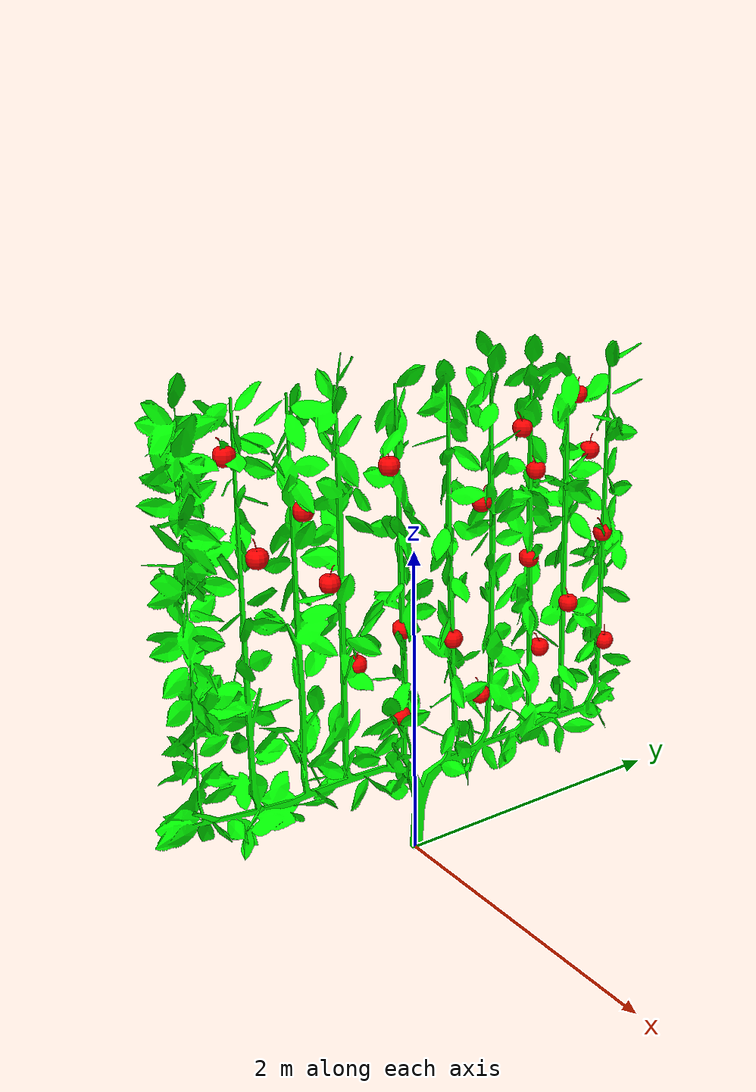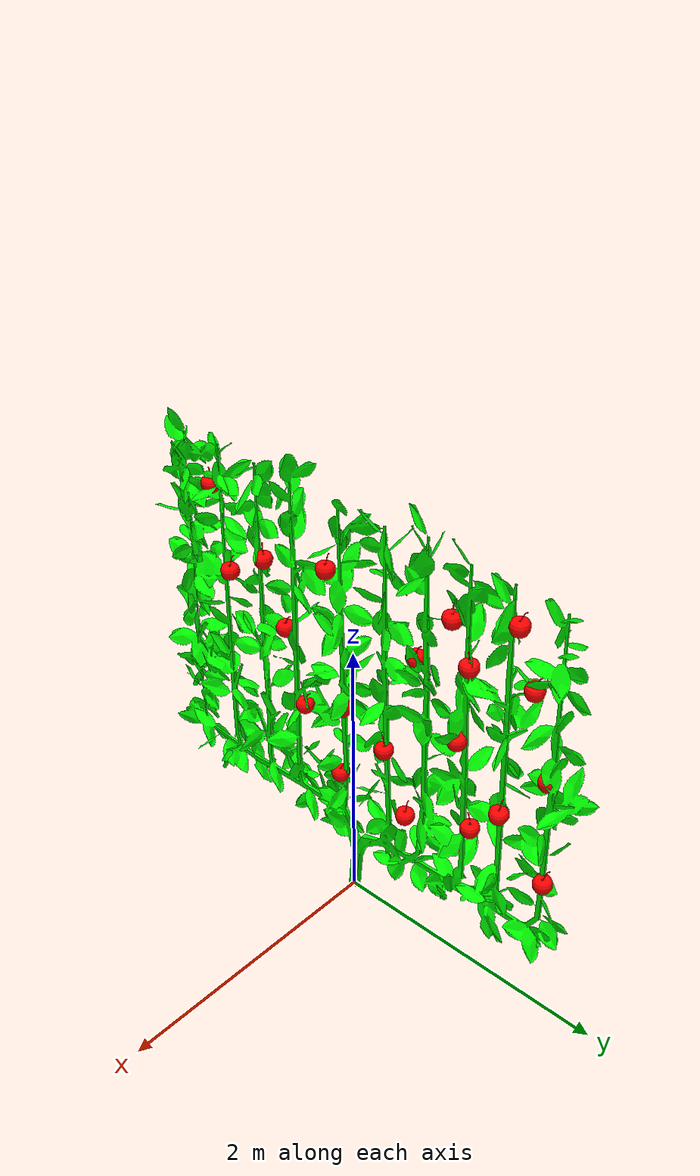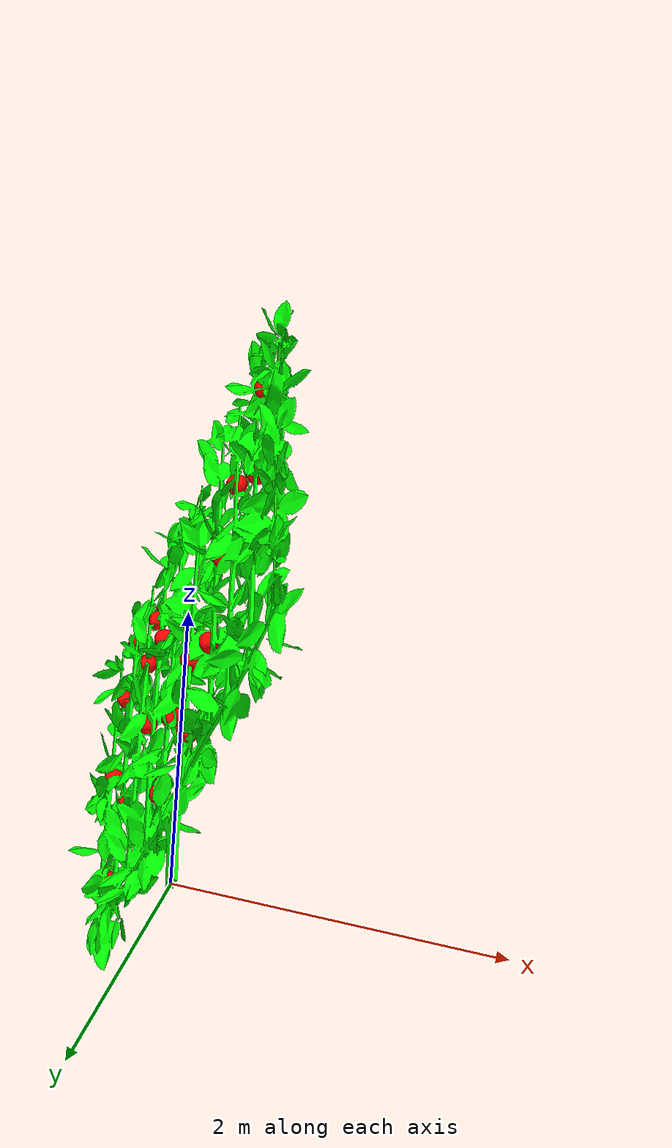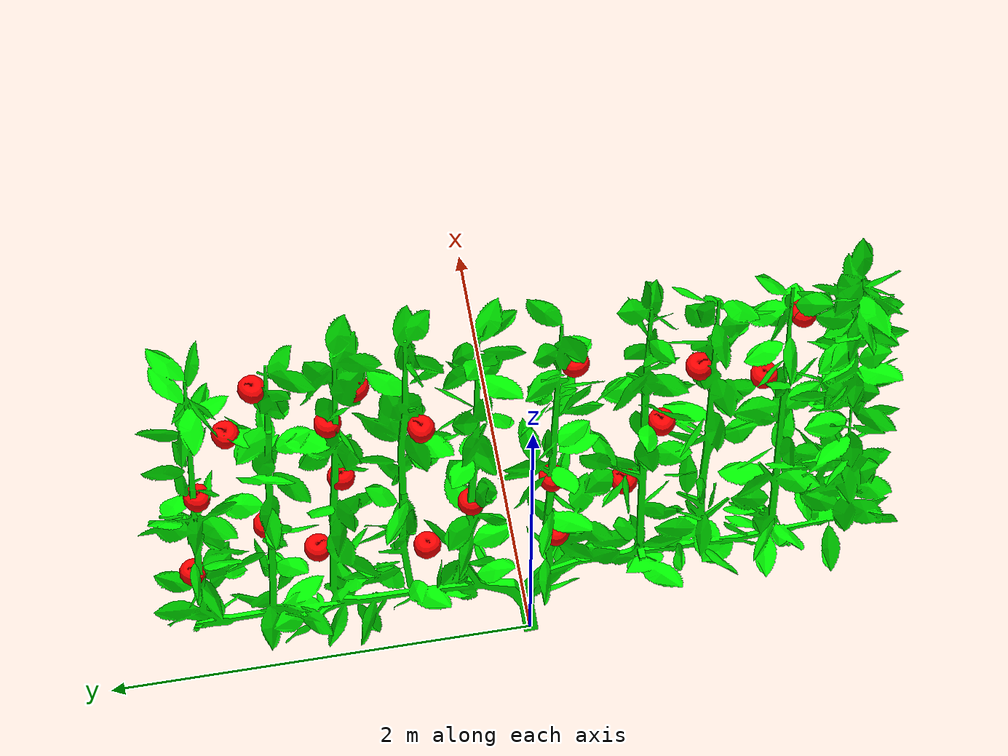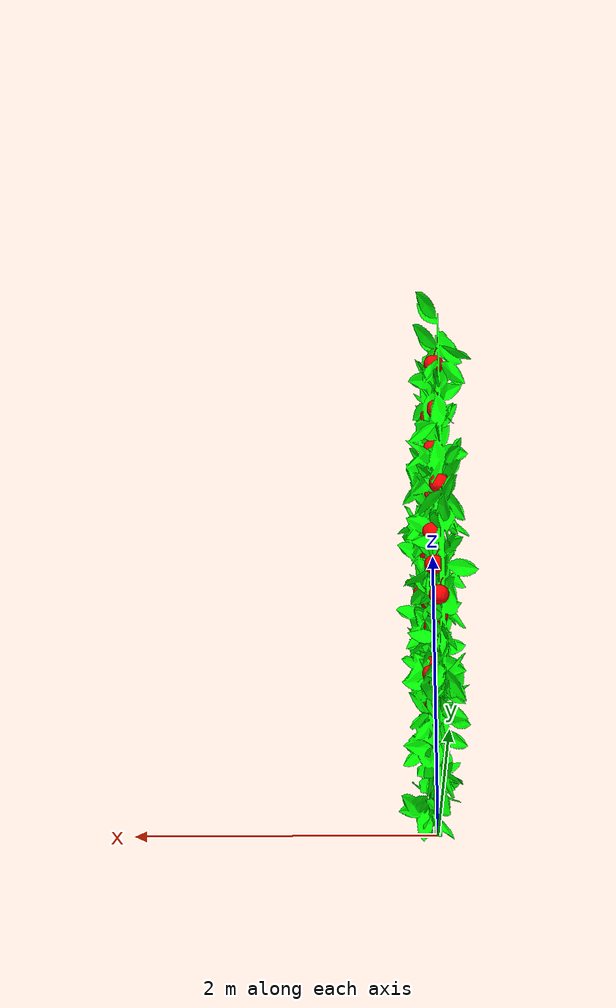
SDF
<?xml version="1.0" ?>
<sdf version="1.5">
  <model name="plant_full2">

    <include>
      <name>p1</name>
      <pose>0.0 0 0 0 0 0</pose>
      <uri>model://plant</uri>
    </include>

<include>
<name>a1</name>
<pose>0 -0.55614 2.0251 0 0 0.41455 </pose>
<uri>model://apple</uri>
</include>

<include>
<name>a2</name>
<pose>0 1.4407 2.5488 0 0 0.56629 </pose>
<uri>model://apple</uri>
</include>

<include>
<name>a3</name>
<pose>0 0.55364 2.3314 0 0 0.32343 </pose>
<uri>model://apple</uri>
</include>

<include>
<name>a4</name>
<pose>0 -0.19689 2.6722 0 0 1.875 </pose>
<uri>model://apple</uri>
</include>

<include>
<name>a5</name>
<pose>0 1.3072 2.9365 0 0 0.79701 </pose>
<uri>model://apple</uri>
</include>

<include>
<name>a6</name>
<pose>0 1.2275 1.5249 0 0 1.8183 </pose>
<uri>model://apple</uri>
</include>

<include>
<name>a7</name>
<pose>0 -1.2615 2.8683 0 0 2.8973 </pose>
<uri>model://apple</uri>
</include>

<include>
<name>a8</name>
<pose>0 0.89581 1.9069 0 0 1.3863 </pose>
<uri>model://apple</uri>
</include>

<include>
<name>a9</name>
<pose>0 0.24471 1.4832 0 0 2.9053 </pose>
<uri>model://apple</uri>
</include>

<include>
<name>a10</name>
<pose>0 -0.79508 2.4907 0 0 2.7559 </pose>
<uri>model://apple</uri>
</include>

<include>
<name>a11</name>
<pose>0 -0.052492 1.6266 0 0 0.38584 </pose>
<uri>model://apple</uri>
</include>

<include>
<name>a12</name>
<pose>0 -1.0719 2.2752 0 0 1.9021 </pose>
<uri>model://apple</uri>
</include>

<include>
<name>a13</name>
<pose>0 0.47793 1.06 0 0 1.9708 </pose>
<uri>model://apple</uri>
</include>

<include>
<name>a14</name>
<pose>0 0.96211 1.2551 0 0 2.9624 </pose>
<uri>model://apple</uri>
</include>

<include>
<name>a15</name>
<pose>0 1.5079 1.9566 0 0 3.0357 </pose>
<uri>model://apple</uri>
</include>

<include>
<name>a16</name>
<pose>0 -0.39149 1.479 0 0 0.52608 </pose>
<uri>model://apple</uri>
</include>

<include>
<name>a17</name>
<pose>0 0.90347 2.4821 0 0 2.8142 </pose>
<uri>model://apple</uri>
</include>

<include>
<name>a18</name>
<pose>0 0.78853 2.7725 0 0 2.3464 </pose>
<uri>model://apple</uri>
</include>

<include>
<name>a19</name>
<pose>0 1.6062 1.1695 0 0 1.0604 </pose>
<uri>model://apple</uri>
</include>

<include>
<name>a20</name>
<pose>0 -0.075814 1.0591 0 0 0.38149 </pose>
<uri>model://apple</uri>
</include>

  </model>
</sdf>

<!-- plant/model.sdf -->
<sdf version="1.5">
  <model name="plant">
    <static>true</static>
    <link name="link">
      <pose>0 0 0 0 0 0</pose>
      <visual name="visual">
        <geometry>
          <mesh>
            <uri>model://plant/meshes/plant.stl</uri>
          </mesh>
        </geometry>
        <material>
          <ambient>0 1 0 1</ambient>
          <diffuse>0 1 0 1</diffuse>
          <specular>0.1 0.1 0.1 1</specular>
          <emissive>0 0 0 0</emissive>
        </material>
      </visual>
    </link>
  </model>
</sdf>

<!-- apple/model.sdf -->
<sdf version="1.5">
  <model name="apple">
    <static>true</static>
    <link name="link">
      <pose>0 0 0 0 0 0</pose>
      <visual name="visual">
        <geometry>
          <mesh>
            <uri>model://apple/meshes/apple.stl</uri>
            <scale>0.5 0.5 0.5</scale>
          </mesh>
        </geometry>
        <material>
          <ambient>1 0 0 1</ambient>
          <diffuse>1 0 0 1</diffuse>
          <specular>0.1 0.1 0.1 1</specular>
          <emissive>0 0 0 0</emissive>
        </material>
      </visual>
    </link>
  </model>
</sdf>
